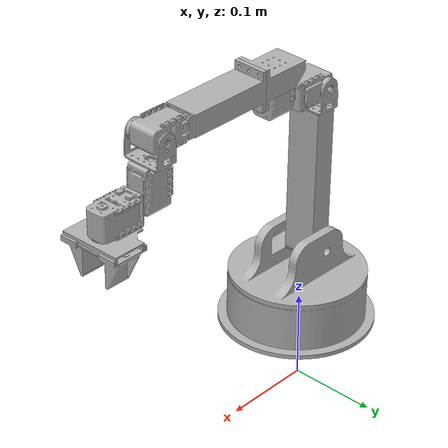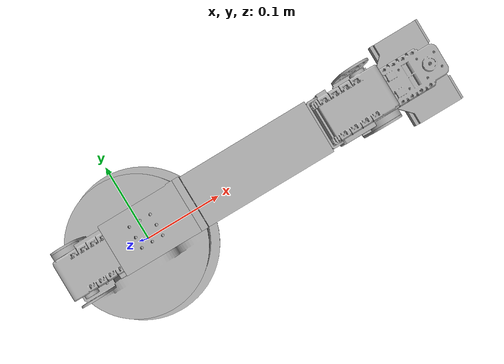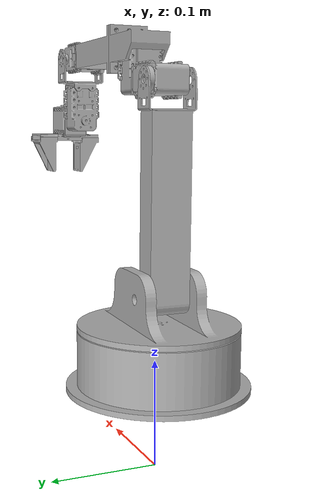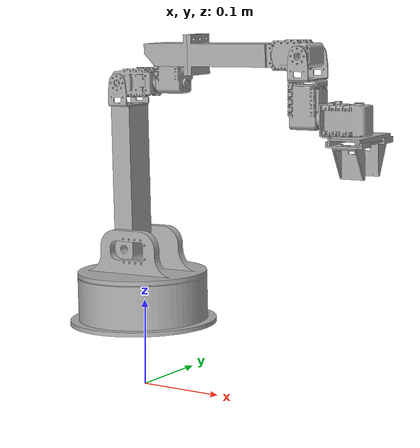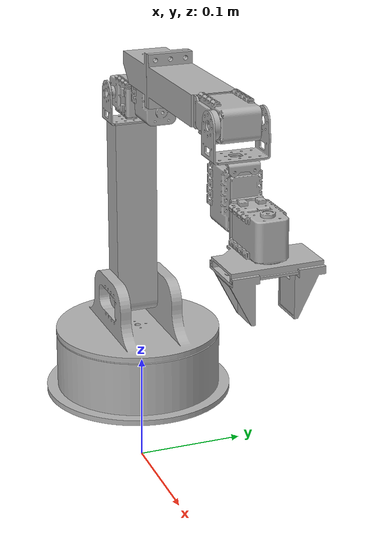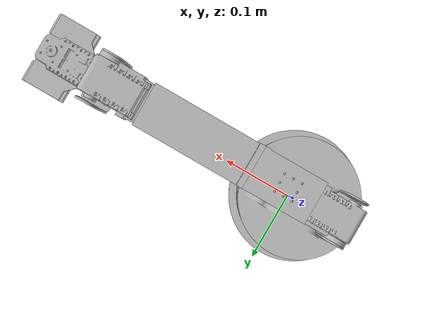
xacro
<?xml version="1.0" ?>
<robot name="mvp_arm_6dof_v2" xmlns:xacro="http://www.ros.org/wiki/xacro">

<xacro:include filename="$(find mvp_arm_6dof_v2_description)/urdf/materials.xacro" />
<xacro:include filename="$(find mvp_arm_6dof_v2_description)/urdf/mvp_arm_6dof_v2.trans" />
<xacro:include filename="$(find mvp_arm_6dof_v2_description)/urdf/mvp_arm_6dof_v2.gazebo" />
<link name="base_link">
  <inertial>
    <origin rpy="0 0 0" xyz="-0.0002685563857322659 -0.004117383840236073 0.09720599739360383"/>
    <mass value="0.2255222028913783"/>
    <inertia ixx="0.000625" ixy="-0.0" ixz="-1.3e-05" iyy="0.000615" iyz="0.0" izz="0.001121"/>
  </inertial>
  <visual>
    <origin rpy="0 0 0" xyz="0 0 0"/>
    <geometry>
      <mesh filename="package://mvp_arm_6dof_v2_description/meshes/base_link.stl" scale="0.001 0.001 0.001"/>
    </geometry>
    <material name="silver"/>
  </visual>
  <collision>
    <origin rpy="0 0 0" xyz="0 0 0"/>
    <geometry>
      <mesh filename="package://mvp_arm_6dof_v2_description/meshes/base_link.stl" scale="0.001 0.001 0.001"/>
    </geometry>
  </collision>
</link>

<link name="Servo_Rotator__1__1">
  <inertial>
    <origin rpy="0 0 0" xyz="4.696790787805938e-05 2.736599626973436e-05 -0.0022484802383110902"/>
    <mass value="0.012286224598738087"/>
    <inertia ixx="0.0" ixy="0.0" ixz="-0.0" iyy="0.0" iyz="-0.0" izz="1e-06"/>
  </inertial>
  <visual>
    <origin rpy="0 0 0" xyz="-0.278678 0.002272 -0.30869"/>
    <geometry>
      <mesh filename="package://mvp_arm_6dof_v2_description/meshes/Servo_Rotator__1__1.stl" scale="0.001 0.001 0.001"/>
    </geometry>
    <material name="silver"/>
  </visual>
  <collision>
    <origin rpy="0 0 0" xyz="-0.278678 0.002272 -0.30869"/>
    <geometry>
      <mesh filename="package://mvp_arm_6dof_v2_description/meshes/Servo_Rotator__1__1.stl" scale="0.001 0.001 0.001"/>
    </geometry>
  </collision>
</link>

<link name="Servo_Rotator__2__1">
  <inertial>
    <origin rpy="0 0 0" xyz="3.197445282709932e-07 -0.002249396881839328 1.0236701699029016e-05"/>
    <mass value="0.012286224598738087"/>
    <inertia ixx="0.0" ixy="-0.0" ixz="0.0" iyy="1e-06" iyz="-0.0" izz="0.0"/>
  </inertial>
  <visual>
    <origin rpy="0 0 0" xyz="-0.214785 0.018149 -0.391636"/>
    <geometry>
      <mesh filename="package://mvp_arm_6dof_v2_description/meshes/Servo_Rotator__2__1.stl" scale="0.001 0.001 0.001"/>
    </geometry>
    <material name="silver"/>
  </visual>
  <collision>
    <origin rpy="0 0 0" xyz="-0.214785 0.018149 -0.391636"/>
    <geometry>
      <mesh filename="package://mvp_arm_6dof_v2_description/meshes/Servo_Rotator__2__1.stl" scale="0.001 0.001 0.001"/>
    </geometry>
  </collision>
</link>

<link name="Servo__3__1">
  <inertial>
    <origin rpy="0 0 0" xyz="0.023084439447248556 0.01543302398482891 -0.007466520807867916"/>
    <mass value="0.32411536495008075"/>
    <inertia ixx="5e-05" ixy="-2e-06" ixz="-1e-06" iyy="7.9e-05" iyz="0.0" izz="9.1e-05"/>
  </inertial>
  <visual>
    <origin rpy="0 0 0" xyz="-0.178587 0.017871 -0.398684"/>
    <geometry>
      <mesh filename="package://mvp_arm_6dof_v2_description/meshes/Servo__3__1.stl" scale="0.001 0.001 0.001"/>
    </geometry>
    <material name="silver"/>
  </visual>
  <collision>
    <origin rpy="0 0 0" xyz="-0.178587 0.017871 -0.398684"/>
    <geometry>
      <mesh filename="package://mvp_arm_6dof_v2_description/meshes/Servo__3__1.stl" scale="0.001 0.001 0.001"/>
    </geometry>
  </collision>
</link>

<link name="Servo__2__1">
  <inertial>
    <origin rpy="0 0 0" xyz="-0.01645020938837613 -0.008616049568100454 -0.0196927644624752"/>
    <mass value="0.32411536495008075"/>
    <inertia ixx="7.9e-05" ixy="0.0" ixz="-1e-06" iyy="9.1e-05" iyz="-0.0" izz="5e-05"/>
  </inertial>
  <visual>
    <origin rpy="0 0 0" xyz="-0.232814 -0.00619 -0.356393"/>
    <geometry>
      <mesh filename="package://mvp_arm_6dof_v2_description/meshes/Servo__2__1.stl" scale="0.001 0.001 0.001"/>
    </geometry>
    <material name="silver"/>
  </visual>
  <collision>
    <origin rpy="0 0 0" xyz="-0.232814 -0.00619 -0.356393"/>
    <geometry>
      <mesh filename="package://mvp_arm_6dof_v2_description/meshes/Servo__2__1.stl" scale="0.001 0.001 0.001"/>
    </geometry>
  </collision>
</link>

<link name="Servo_Rotator__3__1">
  <inertial>
    <origin rpy="0 0 0" xyz="0.002249048184267688 1.7890290807034276e-07 4.676532271863376e-05"/>
    <mass value="0.012286224598738087"/>
    <inertia ixx="1e-06" ixy="0.0" ixz="0.0" iyy="0.0" iyz="0.0" izz="0.0"/>
  </inertial>
  <visual>
    <origin rpy="0 0 0" xyz="-0.232349 0.002482 -0.323916"/>
    <geometry>
      <mesh filename="package://mvp_arm_6dof_v2_description/meshes/Servo_Rotator__3__1.stl" scale="0.001 0.001 0.001"/>
    </geometry>
    <material name="silver"/>
  </visual>
  <collision>
    <origin rpy="0 0 0" xyz="-0.232349 0.002482 -0.323916"/>
    <geometry>
      <mesh filename="package://mvp_arm_6dof_v2_description/meshes/Servo_Rotator__3__1.stl" scale="0.001 0.001 0.001"/>
    </geometry>
  </collision>
</link>

<link name="Servo__4__1">
  <inertial>
    <origin rpy="0 0 0" xyz="0.015363533740432825 3.599470012234868e-05 0.01352566905944469"/>
    <mass value="0.32411536495008075"/>
    <inertia ixx="7.9e-05" ixy="0.0" ixz="2e-06" iyy="9.1e-05" iyz="-0.0" izz="5e-05"/>
  </inertial>
  <visual>
    <origin rpy="0 0 0" xyz="-0.025942 0.002022 -0.354577"/>
    <geometry>
      <mesh filename="package://mvp_arm_6dof_v2_description/meshes/Servo__4__1.stl" scale="0.001 0.001 0.001"/>
    </geometry>
    <material name="silver"/>
  </visual>
  <collision>
    <origin rpy="0 0 0" xyz="-0.025942 0.002022 -0.354577"/>
    <geometry>
      <mesh filename="package://mvp_arm_6dof_v2_description/meshes/Servo__4__1.stl" scale="0.001 0.001 0.001"/>
    </geometry>
  </collision>
</link>

<link name="Bracket__3__1">
  <inertial>
    <origin rpy="0 0 0" xyz="0.01589864118251931 -0.007987181894295325 0.004097782701024066"/>
    <mass value="0.0016262220015435807"/>
    <inertia ixx="0.0" ixy="-0.0" ixz="-0.0" iyy="0.0" iyz="0.0" izz="0.0"/>
  </inertial>
  <visual>
    <origin rpy="0 0 0" xyz="-0.025243 -0.006064 -0.390552"/>
    <geometry>
      <mesh filename="package://mvp_arm_6dof_v2_description/meshes/Bracket__3__1.stl" scale="0.001 0.001 0.001"/>
    </geometry>
    <material name="silver"/>
  </visual>
  <collision>
    <origin rpy="0 0 0" xyz="-0.025243 -0.006064 -0.390552"/>
    <geometry>
      <mesh filename="package://mvp_arm_6dof_v2_description/meshes/Bracket__3__1.stl" scale="0.001 0.001 0.001"/>
    </geometry>
  </collision>
</link>

<link name="Servo_Rotator__4__1">
  <inertial>
    <origin rpy="0 0 0" xyz="0.0020392727454433754 1.9599116875569037e-05 0.008056069500829488"/>
    <mass value="0.012286224598738087"/>
    <inertia ixx="1e-06" ixy="0.0" ixz="0.0" iyy="0.0" iyz="0.0" izz="0.0"/>
  </inertial>
  <visual>
    <origin rpy="0 0 0" xyz="-0.021654 0.002042 -0.346462"/>
    <geometry>
      <mesh filename="package://mvp_arm_6dof_v2_description/meshes/Servo_Rotator__4__1.stl" scale="0.001 0.001 0.001"/>
    </geometry>
    <material name="silver"/>
  </visual>
  <collision>
    <origin rpy="0 0 0" xyz="-0.021654 0.002042 -0.346462"/>
    <geometry>
      <mesh filename="package://mvp_arm_6dof_v2_description/meshes/Servo_Rotator__4__1.stl" scale="0.001 0.001 0.001"/>
    </geometry>
  </collision>
</link>

<link name="Servo__5__1">
  <inertial>
    <origin rpy="0 0 0" xyz="0.013114397820069863 -0.015711494309324826 0.0003817734354029101"/>
    <mass value="0.32411536495008075"/>
    <inertia ixx="5e-05" ixy="-2e-06" ixz="-1e-06" iyy="7.9e-05" iyz="-0.0" izz="9.1e-05"/>
  </inertial>
  <visual>
    <origin rpy="0 0 0" xyz="0.020045 -0.01416 -0.353328"/>
    <geometry>
      <mesh filename="package://mvp_arm_6dof_v2_description/meshes/Servo__5__1.stl" scale="0.001 0.001 0.001"/>
    </geometry>
    <material name="silver"/>
  </visual>
  <collision>
    <origin rpy="0 0 0" xyz="0.020045 -0.01416 -0.353328"/>
    <geometry>
      <mesh filename="package://mvp_arm_6dof_v2_description/meshes/Servo__5__1.stl" scale="0.001 0.001 0.001"/>
    </geometry>
  </collision>
</link>

<link name="Bracket__5__1">
  <inertial>
    <origin rpy="0 0 0" xyz="0.00344356718978997 0.01601961665031654 0.008055349340560902"/>
    <mass value="0.0016262220015435807"/>
    <inertia ixx="0.0" ixy="0.0" ixz="0.0" iyy="0.0" iyz="0.0" izz="0.0"/>
  </inertial>
  <visual>
    <origin rpy="0 0 0" xyz="-0.016159 0.018043 -0.346355"/>
    <geometry>
      <mesh filename="package://mvp_arm_6dof_v2_description/meshes/Bracket__5__1.stl" scale="0.001 0.001 0.001"/>
    </geometry>
    <material name="silver"/>
  </visual>
  <collision>
    <origin rpy="0 0 0" xyz="-0.016159 0.018043 -0.346355"/>
    <geometry>
      <mesh filename="package://mvp_arm_6dof_v2_description/meshes/Bracket__5__1.stl" scale="0.001 0.001 0.001"/>
    </geometry>
  </collision>
</link>

<link name="Forearm_1">
  <inertial>
    <origin rpy="0 0 0" xyz="0.04811303961108866 1.1598853245149265e-05 0.0012336044389075207"/>
    <mass value="0.7719250888938243"/>
    <inertia ixx="0.000141" ixy="-0.0" ixz="-1.8e-05" iyy="0.000726" iyz="0.0" izz="0.000771"/>
  </inertial>
  <visual>
    <origin rpy="0 0 0" xyz="-0.073332 0.001934 -0.387836"/>
    <geometry>
      <mesh filename="package://mvp_arm_6dof_v2_description/meshes/Forearm_1.stl" scale="0.001 0.001 0.001"/>
    </geometry>
    <material name="silver"/>
  </visual>
  <collision>
    <origin rpy="0 0 0" xyz="-0.073332 0.001934 -0.387836"/>
    <geometry>
      <mesh filename="package://mvp_arm_6dof_v2_description/meshes/Forearm_1.stl" scale="0.001 0.001 0.001"/>
    </geometry>
  </collision>
</link>

<link name="Forearm_Joint_1">
  <inertial>
    <origin rpy="0 0 0" xyz="0.019749225031501748 -1.369065446798763e-05 -0.007300482312114054"/>
    <mass value="0.24639014270019174"/>
    <inertia ixx="6e-05" ixy="0.0" ixz="7e-06" iyy="9.9e-05" iyz="0.0" izz="0.000118"/>
  </inertial>
  <visual>
    <origin rpy="0 0 0" xyz="-0.033096 0.001921 -0.39628"/>
    <geometry>
      <mesh filename="package://mvp_arm_6dof_v2_description/meshes/Forearm_Joint_1.stl" scale="0.001 0.001 0.001"/>
    </geometry>
    <material name="silver"/>
  </visual>
  <collision>
    <origin rpy="0 0 0" xyz="-0.033096 0.001921 -0.39628"/>
    <geometry>
      <mesh filename="package://mvp_arm_6dof_v2_description/meshes/Forearm_Joint_1.stl" scale="0.001 0.001 0.001"/>
    </geometry>
  </collision>
</link>

<link name="Servo_Rotator__5__1">
  <inertial>
    <origin rpy="0 0 0" xyz="0.00799743271970977 -0.002248929390793089 0.00021621004086314066"/>
    <mass value="0.012286224598738087"/>
    <inertia ixx="0.0" ixy="-0.0" ixz="0.0" iyy="1e-06" iyz="-0.0" izz="0.0"/>
  </inertial>
  <visual>
    <origin rpy="0 0 0" xyz="0.028043 -0.018658 -0.353106"/>
    <geometry>
      <mesh filename="package://mvp_arm_6dof_v2_description/meshes/Servo_Rotator__5__1.stl" scale="0.001 0.001 0.001"/>
    </geometry>
    <material name="silver"/>
  </visual>
  <collision>
    <origin rpy="0 0 0" xyz="0.028043 -0.018658 -0.353106"/>
    <geometry>
      <mesh filename="package://mvp_arm_6dof_v2_description/meshes/Servo_Rotator__5__1.stl" scale="0.001 0.001 0.001"/>
    </geometry>
  </collision>
</link>

<link name="Elbow_Hinge__1__2">
  <inertial>
    <origin rpy="0 0 0" xyz="-0.013766752878679976 2.1515676582339795e-05 0.009886535758384607"/>
    <mass value="0.0037556666472927302"/>
    <inertia ixx="2e-06" ixy="0.0" ixz="0.0" iyy="1e-06" iyz="0.0" izz="1e-06"/>
  </inertial>
  <visual>
    <origin rpy="0 0 0" xyz="0.005849 0.0024 -0.327232"/>
    <geometry>
      <mesh filename="package://mvp_arm_6dof_v2_description/meshes/Elbow_Hinge__1__2.stl" scale="0.001 0.001 0.001"/>
    </geometry>
    <material name="silver"/>
  </visual>
  <collision>
    <origin rpy="0 0 0" xyz="0.005849 0.0024 -0.327232"/>
    <geometry>
      <mesh filename="package://mvp_arm_6dof_v2_description/meshes/Elbow_Hinge__1__2.stl" scale="0.001 0.001 0.001"/>
    </geometry>
  </collision>
</link>

<link name="Arm_Link_1">
  <inertial>
    <origin rpy="0 0 0" xyz="-0.002023573058774996 -0.01881587365277383 0.07708599083440679"/>
    <mass value="0.21427857804003209"/>
    <inertia ixx="0.00058" ixy="0.0" ixz="1.4e-05" iyy="0.000565" iyz="-1e-06" izz="3.7e-05"/>
  </inertial>
  <visual>
    <origin rpy="0 0 0" xyz="0.014005 -0.016203 -0.161915"/>
    <geometry>
      <mesh filename="package://mvp_arm_6dof_v2_description/meshes/Arm_Link_1.stl" scale="0.001 0.001 0.001"/>
    </geometry>
    <material name="silver"/>
  </visual>
  <collision>
    <origin rpy="0 0 0" xyz="0.014005 -0.016203 -0.161915"/>
    <geometry>
      <mesh filename="package://mvp_arm_6dof_v2_description/meshes/Arm_Link_1.stl" scale="0.001 0.001 0.001"/>
    </geometry>
  </collision>
</link>

<link name="Shoulder_Joint_1">
  <inertial>
    <origin rpy="0 0 0" xyz="-0.0002783520807599555 0.001716966723272633 0.013009417733686551"/>
    <mass value="0.1980303324276481"/>
    <inertia ixx="0.00026" ixy="-0.0" ixz="-5e-06" iyy="0.000259" iyz="-5e-06" izz="0.00042"/>
  </inertial>
  <visual>
    <origin rpy="0 0 0" xyz="0.001172 0.00337 -0.130745"/>
    <geometry>
      <mesh filename="package://mvp_arm_6dof_v2_description/meshes/Shoulder_Joint_1.stl" scale="0.001 0.001 0.001"/>
    </geometry>
    <material name="silver"/>
  </visual>
  <collision>
    <origin rpy="0 0 0" xyz="0.001172 0.00337 -0.130745"/>
    <geometry>
      <mesh filename="package://mvp_arm_6dof_v2_description/meshes/Shoulder_Joint_1.stl" scale="0.001 0.001 0.001"/>
    </geometry>
  </collision>
</link>

<link name="Wrist_Hinge_1">
  <inertial>
    <origin rpy="0 0 0" xyz="0.0001687834064507121 0.020961349127553694 -0.008348654777393216"/>
    <mass value="0.0037556666472927302"/>
    <inertia ixx="2e-06" ixy="0.0" ixz="0.0" iyy="1e-06" iyz="0.0" izz="1e-06"/>
  </inertial>
  <visual>
    <origin rpy="0 0 0" xyz="-0.214953 0.022686 -0.383658"/>
    <geometry>
      <mesh filename="package://mvp_arm_6dof_v2_description/meshes/Wrist_Hinge_1.stl" scale="0.001 0.001 0.001"/>
    </geometry>
    <material name="silver"/>
  </visual>
  <collision>
    <origin rpy="0 0 0" xyz="-0.214953 0.022686 -0.383658"/>
    <geometry>
      <mesh filename="package://mvp_arm_6dof_v2_description/meshes/Wrist_Hinge_1.stl" scale="0.001 0.001 0.001"/>
    </geometry>
  </collision>
</link>

<link name="Bracket__1__1">
  <inertial>
    <origin rpy="0 0 0" xyz="0.0016732761117350947 -9.794040194281229e-05 0.008036379638807933"/>
    <mass value="0.0016262220015435807"/>
    <inertia ixx="0.0" ixy="-0.0" ixz="0.0" iyy="0.0" iyz="0.0" izz="0.0"/>
  </inertial>
  <visual>
    <origin rpy="0 0 0" xyz="-0.237016 0.002383 -0.316012"/>
    <geometry>
      <mesh filename="package://mvp_arm_6dof_v2_description/meshes/Bracket__1__1.stl" scale="0.001 0.001 0.001"/>
    </geometry>
    <material name="silver"/>
  </visual>
  <collision>
    <origin rpy="0 0 0" xyz="-0.237016 0.002383 -0.316012"/>
    <geometry>
      <mesh filename="package://mvp_arm_6dof_v2_description/meshes/Bracket__1__1.stl" scale="0.001 0.001 0.001"/>
    </geometry>
  </collision>
</link>

<link name="Servo__1__1">
  <inertial>
    <origin rpy="0 0 0" xyz="0.023226772127093703 -0.007790584361720188 -0.016092423843160952"/>
    <mass value="0.32411536495008075"/>
    <inertia ixx="5e-05" ixy="0.0" ixz="-2e-06" iyy="9.1e-05" iyz="0.0" izz="7.9e-05"/>
  </inertial>
  <visual>
    <origin rpy="0 0 0" xyz="-0.242009 -0.005322 -0.340218"/>
    <geometry>
      <mesh filename="package://mvp_arm_6dof_v2_description/meshes/Servo__1__1.stl" scale="0.001 0.001 0.001"/>
    </geometry>
    <material name="silver"/>
  </visual>
  <collision>
    <origin rpy="0 0 0" xyz="-0.242009 -0.005322 -0.340218"/>
    <geometry>
      <mesh filename="package://mvp_arm_6dof_v2_description/meshes/Servo__1__1.stl" scale="0.001 0.001 0.001"/>
    </geometry>
  </collision>
</link>

<link name="Bracket__4__1">
  <inertial>
    <origin rpy="0 0 0" xyz="-0.007959256120512181 -1.0287947060996566e-05 -0.002008019445163489"/>
    <mass value="0.0016262220015435807"/>
    <inertia ixx="0.0" ixy="-0.0" ixz="-0.0" iyy="0.0" iyz="0.0" izz="0.0"/>
  </inertial>
  <visual>
    <origin rpy="0 0 0" xyz="-0.223335 0.00177 -0.365233"/>
    <geometry>
      <mesh filename="package://mvp_arm_6dof_v2_description/meshes/Bracket__4__1.stl" scale="0.001 0.001 0.001"/>
    </geometry>
    <material name="silver"/>
  </visual>
  <collision>
    <origin rpy="0 0 0" xyz="-0.223335 0.00177 -0.365233"/>
    <geometry>
      <mesh filename="package://mvp_arm_6dof_v2_description/meshes/Bracket__4__1.stl" scale="0.001 0.001 0.001"/>
    </geometry>
  </collision>
</link>

<link name="Bracket__2__1">
  <inertial>
    <origin rpy="0 0 0" xyz="0.0021702523840013976 -5.735108448202508e-05 -0.012446942249239479"/>
    <mass value="0.0016262220015435807"/>
    <inertia ixx="0.0" ixy="0.0" ixz="0.0" iyy="0.0" iyz="0.0" izz="0.0"/>
  </inertial>
  <visual>
    <origin rpy="0 0 0" xyz="-0.172968 0.001852 -0.402964"/>
    <geometry>
      <mesh filename="package://mvp_arm_6dof_v2_description/meshes/Bracket__2__1.stl" scale="0.001 0.001 0.001"/>
    </geometry>
    <material name="silver"/>
  </visual>
  <collision>
    <origin rpy="0 0 0" xyz="-0.172968 0.001852 -0.402964"/>
    <geometry>
      <mesh filename="package://mvp_arm_6dof_v2_description/meshes/Bracket__2__1.stl" scale="0.001 0.001 0.001"/>
    </geometry>
  </collision>
</link>

<link name="Gripper_Slider_1">
  <inertial>
    <origin rpy="0 0 0" xyz="0.029607737023973846 0.013304628840371863 -0.0014577479840566787"/>
    <mass value="0.006653616089325752"/>
    <inertia ixx="3e-06" ixy="0.0" ixz="-0.0" iyy="2e-06" iyz="-0.0" izz="5e-06"/>
  </inertial>
  <visual>
    <origin rpy="0 0 0" xyz="-0.247936 0.015781 -0.30813"/>
    <geometry>
      <mesh filename="package://mvp_arm_6dof_v2_description/meshes/Gripper_Slider_1.stl" scale="0.001 0.001 0.001"/>
    </geometry>
    <material name="silver"/>
  </visual>
  <collision>
    <origin rpy="0 0 0" xyz="-0.247936 0.015781 -0.30813"/>
    <geometry>
      <mesh filename="package://mvp_arm_6dof_v2_description/meshes/Gripper_Slider_1.stl" scale="0.001 0.001 0.001"/>
    </geometry>
  </collision>
</link>

<link name="Right_Gripper_Finger_1">
  <inertial>
    <origin rpy="0 0 0" xyz="-0.019770206172384563 0.013486368095181816 -0.01214469345139918"/>
    <mass value="0.00839361387509603"/>
    <inertia ixx="1e-06" ixy="-0.0" ixz="-0.0" iyy="2e-06" iyz="0.0" izz="1e-06"/>
  </inertial>
  <visual>
    <origin rpy="0 0 0" xyz="-0.299019 0.03819 -0.30253"/>
    <geometry>
      <mesh filename="package://mvp_arm_6dof_v2_description/meshes/Right_Gripper_Finger_1.stl" scale="0.001 0.001 0.001"/>
    </geometry>
    <material name="silver"/>
  </visual>
  <collision>
    <origin rpy="0 0 0" xyz="-0.299019 0.03819 -0.30253"/>
    <geometry>
      <mesh filename="package://mvp_arm_6dof_v2_description/meshes/Right_Gripper_Finger_1.stl" scale="0.001 0.001 0.001"/>
    </geometry>
  </collision>
</link>

<link name="Left_Gripper_Finger_1">
  <inertial>
    <origin rpy="0 0 0" xyz="0.00023833865276129407 -0.00604606763680195 -0.0113424483965332"/>
    <mass value="0.008393613874943608"/>
    <inertia ixx="1e-06" ixy="0.0" ixz="-0.0" iyy="2e-06" iyz="-0.0" izz="1e-06"/>
  </inertial>
  <visual>
    <origin rpy="0 0 0" xyz="-0.278989 -0.026646 -0.302287"/>
    <geometry>
      <mesh filename="package://mvp_arm_6dof_v2_description/meshes/Left_Gripper_Finger_1.stl" scale="0.001 0.001 0.001"/>
    </geometry>
    <material name="silver"/>
  </visual>
  <collision>
    <origin rpy="0 0 0" xyz="-0.278989 -0.026646 -0.302287"/>
    <geometry>
      <mesh filename="package://mvp_arm_6dof_v2_description/meshes/Left_Gripper_Finger_1.stl" scale="0.001 0.001 0.001"/>
    </geometry>
  </collision>
</link>

<joint name="Rev7" type="continuous">
  <origin rpy="0 0 0" xyz="0.036669 -0.007594 -0.031528"/>
  <parent link="Servo__1__1"/>
  <child link="Servo_Rotator__1__1"/>
  <axis xyz="0.020917 0.012351 -0.999705"/>
</joint>

<joint name="Rev6" type="continuous">
  <origin rpy="0 0 0" xyz="0.036198 -0.000278 -0.007048"/>
  <parent link="Servo__3__1"/>
  <child link="Servo_Rotator__2__1"/>
  <axis xyz="-0.000119 0.999989 -0.004607"/>
</joint>

<joint name="Rigid4" type="fixed">
  <origin rpy="0 0 0" xyz="0.005619 -0.016019 -0.00428"/>
  <parent link="Bracket__2__1"/>
  <child link="Servo__3__1"/>
</joint>

<joint name="Rigid5" type="fixed">
  <origin rpy="0 0 0" xyz="0.009479 0.00796 -0.00884"/>
  <parent link="Bracket__4__1"/>
  <child link="Servo__2__1"/>
</joint>

<joint name="Rev5" type="continuous">
  <origin rpy="0 0 0" xyz="-0.000465 -0.008672 -0.032477"/>
  <parent link="Servo__2__1"/>
  <child link="Servo_Rotator__3__1"/>
  <axis xyz="0.999781 0.000215 0.020922"/>
</joint>

<joint name="Rev4" type="continuous">
  <origin rpy="0 0 0" xyz="0.004288 2e-05 0.008115"/>
  <parent link="Servo_Rotator__4__1"/>
  <child link="Servo__4__1"/>
  <axis xyz="0.999653 0.00024 0.026324"/>
</joint>

<joint name="Rigid7" type="fixed">
  <origin rpy="0 0 0" xyz="-0.000699 0.008086 0.035975"/>
  <parent link="Servo__4__1"/>
  <child link="Bracket__3__1"/>
</joint>

<joint name="Rigid8" type="fixed">
  <origin rpy="0 0 0" xyz="0.005495 0.016001 0.000107"/>
  <parent link="Bracket__5__1"/>
  <child link="Servo_Rotator__4__1"/>
</joint>

<joint name="Rev3" type="continuous">
  <origin rpy="0 0 0" xyz="0.007998 -0.004498 0.000222"/>
  <parent link="Servo_Rotator__5__1"/>
  <child link="Servo__5__1"/>
  <axis xyz="0.000177 -0.999997 0.002395"/>
</joint>

<joint name="Rigid9" type="fixed">
  <origin rpy="0 0 0" xyz="0.036204 -0.032203 -0.006973"/>
  <parent link="Servo__5__1"/>
  <child link="Bracket__5__1"/>
</joint>

<joint name="Rigid11" type="fixed">
  <origin rpy="0 0 0" xyz="0.040236 -1.3e-05 -0.008444"/>
  <parent link="Forearm_Joint_1"/>
  <child link="Forearm_1"/>
</joint>

<joint name="Rigid13" type="fixed">
  <origin rpy="0 0 0" xyz="0.007853 -0.007985 0.005728"/>
  <parent link="Bracket__3__1"/>
  <child link="Forearm_Joint_1"/>
</joint>

<joint name="Rigid14" type="fixed">
  <origin rpy="0 0 0" xyz="-0.022194 0.021058 0.025874"/>
  <parent link="Elbow_Hinge__1__2"/>
  <child link="Servo_Rotator__5__1"/>
</joint>

<joint name="Rigid15" type="fixed">
  <origin rpy="0 0 0" xyz="0.008156 -0.018603 0.165317"/>
  <parent link="Arm_Link_1"/>
  <child link="Elbow_Hinge__1__2"/>
</joint>

<joint name="Rev2" type="continuous">
  <origin rpy="0 0 0" xyz="-0.012833 0.019573 0.03117"/>
  <parent link="Shoulder_Joint_1"/>
  <child link="Arm_Link_1"/>
  <axis xyz="-0.000177 0.999997 -0.002395"/>
</joint>

<joint name="Rev1" type="continuous">
  <origin rpy="0 0 0" xyz="-0.001172 -0.00337 0.130745"/>
  <parent link="base_link"/>
  <child link="Shoulder_Joint_1"/>
  <axis xyz="0.026933 -0.00239 -0.999634"/>
</joint>

<joint name="Rigid16" type="fixed">
  <origin rpy="0 0 0" xyz="0.000168 -0.004537 -0.007978"/>
  <parent link="Servo_Rotator__2__1"/>
  <child link="Wrist_Hinge_1"/>
</joint>

<joint name="Rigid70" type="fixed">
  <origin rpy="0 0 0" xyz="0.004667 9.9e-05 -0.007904"/>
  <parent link="Servo_Rotator__3__1"/>
  <child link="Bracket__1__1"/>
</joint>

<joint name="Rigid71" type="fixed">
  <origin rpy="0 0 0" xyz="0.004993 0.007705 0.024206"/>
  <parent link="Bracket__1__1"/>
  <child link="Servo__1__1"/>
</joint>

<joint name="Rigid72" type="fixed">
  <origin rpy="0 0 0" xyz="0.008382 0.020916 -0.018425"/>
  <parent link="Wrist_Hinge_1"/>
  <child link="Bracket__4__1"/>
</joint>

<joint name="Rigid74" type="fixed">
  <origin rpy="0 0 0" xyz="0.099636 8.2e-05 0.015128"/>
  <parent link="Forearm_1"/>
  <child link="Bracket__2__1"/>
</joint>

<joint name="Rigid85" type="fixed">
  <origin rpy="0 0 0" xyz="0.005927 -0.021103 -0.032088"/>
  <parent link="Servo__1__1"/>
  <child link="Gripper_Slider_1"/>
</joint>

<joint name="Slider1" type="prismatic">
  <origin rpy="0 0 0" xyz="0.051083 -0.022409 -0.0056"/>
  <parent link="Gripper_Slider_1"/>
  <child link="Right_Gripper_Finger_1"/>
  <axis xyz="-0.000474 0.999924 0.012343"/>
  <limit effort="100" lower="0.0" upper=".0150" velocity="100"/>
</joint>

<joint name="Slider2" type="prismatic">
  <origin rpy="0 0 0" xyz="0.031053 0.042427 -0.005843"/>
  <parent link="Gripper_Slider_1"/>
  <child link="Left_Gripper_Finger_1"/>
  <axis xyz="-0.000474 0.999924 0.012343"/>
  <limit effort="100" lower="-.0150" upper="0" velocity="100"/>
</joint>
</robot>

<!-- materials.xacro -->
<robot name="mvp_arm_6dof_v2" xmlns:xacro="http://www.ros.org/wiki/xacro" >

<material name="silver">
  <color rgba="0.700 0.700 0.700 1.000"/>
</material>

</robot>

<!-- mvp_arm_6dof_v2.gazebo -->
<robot name="mvp_arm_6dof_v2" xmlns:xacro="http://www.ros.org/wiki/xacro" >

<xacro:property name="body_color" value="Gazebo/Silver" />

<gazebo>
  <plugin filename="libgazebo_ros_control.so" name="control"/>
</gazebo>
<gazebo reference="base_link">
  <material>${body_color}</material>
  <mu1>0.2</mu1>
  <mu2>0.2</mu2>
  <selfCollide>true</selfCollide>
  <gravity>true</gravity>
</gazebo>

<gazebo reference="Servo_Rotator__1__1">
  <material>${body_color}</material>
  <mu1>0.2</mu1>
  <mu2>0.2</mu2>
  <selfCollide>true</selfCollide>
</gazebo>

<gazebo reference="Servo_Rotator__2__1">
  <material>${body_color}</material>
  <mu1>0.2</mu1>
  <mu2>0.2</mu2>
  <selfCollide>true</selfCollide>
</gazebo>

<gazebo reference="Servo__3__1">
  <material>${body_color}</material>
  <mu1>0.2</mu1>
  <mu2>0.2</mu2>
  <selfCollide>true</selfCollide>
</gazebo>

<gazebo reference="Servo__2__1">
  <material>${body_color}</material>
  <mu1>0.2</mu1>
  <mu2>0.2</mu2>
  <selfCollide>true</selfCollide>
</gazebo>

<gazebo reference="Servo_Rotator__3__1">
  <material>${body_color}</material>
  <mu1>0.2</mu1>
  <mu2>0.2</mu2>
  <selfCollide>true</selfCollide>
</gazebo>

<gazebo reference="Servo__4__1">
  <material>${body_color}</material>
  <mu1>0.2</mu1>
  <mu2>0.2</mu2>
  <selfCollide>true</selfCollide>
</gazebo>

<gazebo reference="Bracket__3__1">
  <material>${body_color}</material>
  <mu1>0.2</mu1>
  <mu2>0.2</mu2>
  <selfCollide>true</selfCollide>
</gazebo>

<gazebo reference="Servo_Rotator__4__1">
  <material>${body_color}</material>
  <mu1>0.2</mu1>
  <mu2>0.2</mu2>
  <selfCollide>true</selfCollide>
</gazebo>

<gazebo reference="Servo__5__1">
  <material>${body_color}</material>
  <mu1>0.2</mu1>
  <mu2>0.2</mu2>
  <selfCollide>true</selfCollide>
</gazebo>

<gazebo reference="Bracket__5__1">
  <material>${body_color}</material>
  <mu1>0.2</mu1>
  <mu2>0.2</mu2>
  <selfCollide>true</selfCollide>
</gazebo>

<gazebo reference="Forearm_1">
  <material>${body_color}</material>
  <mu1>0.2</mu1>
  <mu2>0.2</mu2>
  <selfCollide>true</selfCollide>
</gazebo>

<gazebo reference="Forearm_Joint_1">
  <material>${body_color}</material>
  <mu1>0.2</mu1>
  <mu2>0.2</mu2>
  <selfCollide>true</selfCollide>
</gazebo>

<gazebo reference="Servo_Rotator__5__1">
  <material>${body_color}</material>
  <mu1>0.2</mu1>
  <mu2>0.2</mu2>
  <selfCollide>true</selfCollide>
</gazebo>

<gazebo reference="Elbow_Hinge__1__2">
  <material>${body_color}</material>
  <mu1>0.2</mu1>
  <mu2>0.2</mu2>
  <selfCollide>true</selfCollide>
</gazebo>

<gazebo reference="Arm_Link_1">
  <material>${body_color}</material>
  <mu1>0.2</mu1>
  <mu2>0.2</mu2>
  <selfCollide>true</selfCollide>
</gazebo>

<gazebo reference="Shoulder_Joint_1">
  <material>${body_color}</material>
  <mu1>0.2</mu1>
  <mu2>0.2</mu2>
  <selfCollide>true</selfCollide>
</gazebo>

<gazebo reference="Wrist_Hinge_1">
  <material>${body_color}</material>
  <mu1>0.2</mu1>
  <mu2>0.2</mu2>
  <selfCollide>true</selfCollide>
</gazebo>

<gazebo reference="Bracket__1__1">
  <material>${body_color}</material>
  <mu1>0.2</mu1>
  <mu2>0.2</mu2>
  <selfCollide>true</selfCollide>
</gazebo>

<gazebo reference="Servo__1__1">
  <material>${body_color}</material>
  <mu1>0.2</mu1>
  <mu2>0.2</mu2>
  <selfCollide>true</selfCollide>
</gazebo>

<gazebo reference="Bracket__4__1">
  <material>${body_color}</material>
  <mu1>0.2</mu1>
  <mu2>0.2</mu2>
  <selfCollide>true</selfCollide>
</gazebo>

<gazebo reference="Bracket__2__1">
  <material>${body_color}</material>
  <mu1>0.2</mu1>
  <mu2>0.2</mu2>
  <selfCollide>true</selfCollide>
</gazebo>

<gazebo reference="Gripper_Slider_1">
  <material>${body_color}</material>
  <mu1>0.2</mu1>
  <mu2>0.2</mu2>
  <selfCollide>true</selfCollide>
</gazebo>

<gazebo reference="Left_Servo_Finger_Connector_1">
  <material>${body_color}</material>
  <mu1>0.2</mu1>
  <mu2>0.2</mu2>
  <selfCollide>true</selfCollide>
</gazebo>

<gazebo reference="Right_Servo_Finger_Connector_1">
  <material>${body_color}</material>
  <mu1>0.2</mu1>
  <mu2>0.2</mu2>
  <selfCollide>true</selfCollide>
</gazebo>

<gazebo reference="Right_Gripper_Finger_1">
  <material>${body_color}</material>
  <mu1>0.2</mu1>
  <mu2>0.2</mu2>
  <selfCollide>true</selfCollide>
</gazebo>

<gazebo reference="Right_Gripper_Finger_1">
  <material>${body_color}</material>
  <mu1>0.2</mu1>
  <mu2>0.2</mu2>
  <selfCollide>true</selfCollide>
</gazebo>

<gazebo reference="Left_Gripper_Finger_1">
  <material>${body_color}</material>
  <mu1>0.2</mu1>
  <mu2>0.2</mu2>
  <selfCollide>true</selfCollide>
</gazebo>

<gazebo reference="Left_Gripper_Finger_1">
  <material>${body_color}</material>
  <mu1>0.2</mu1>
  <mu2>0.2</mu2>
  <selfCollide>true</selfCollide>
</gazebo>

</robot>
